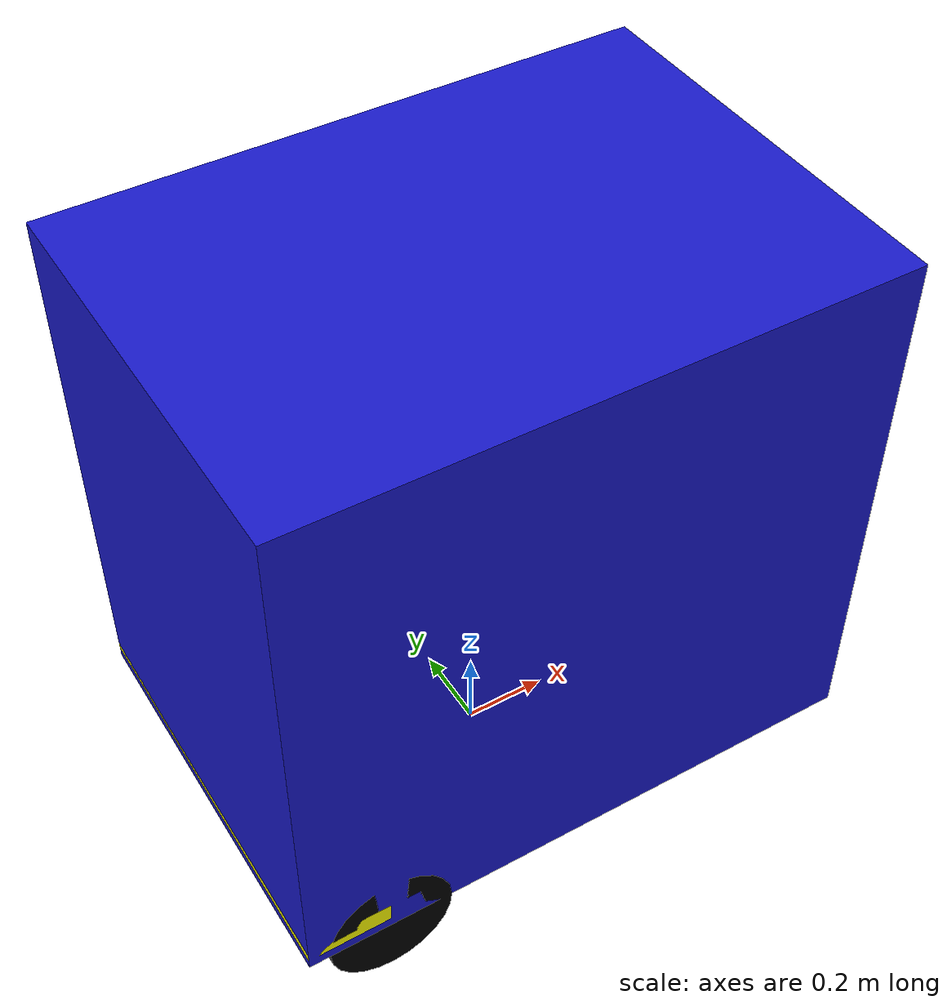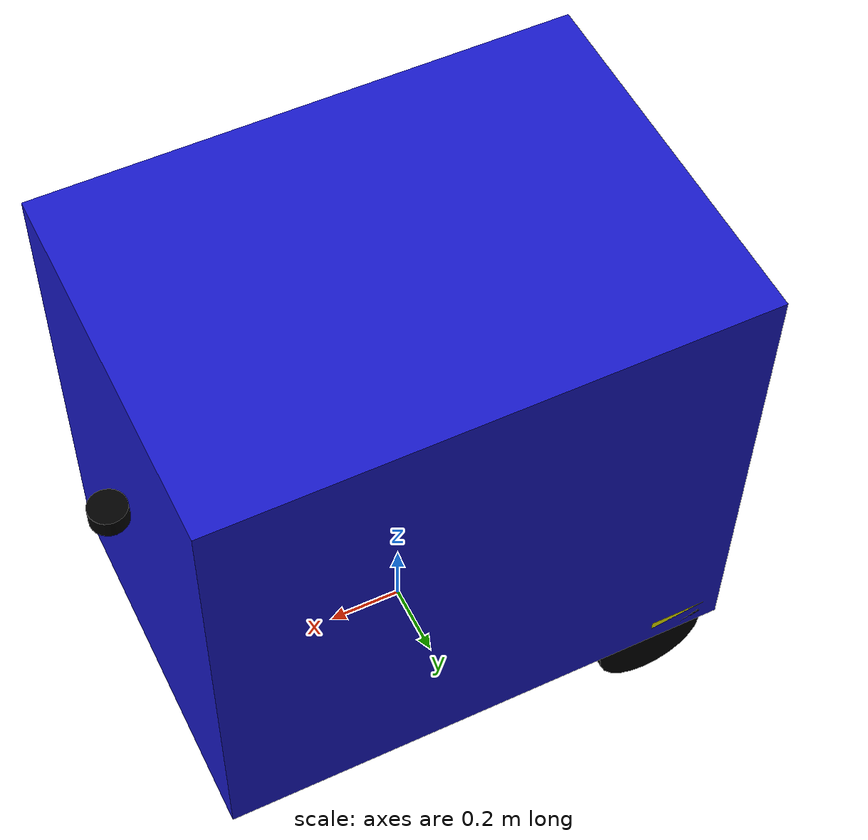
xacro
<?xml version="1.0"?>
<robot name="scrubber_robot" xmlns:xacro="http://www.ros.org/wiki/xacro">

  <xacro:property name="length" value="1.4"/>
  <xacro:property name="width" value="1.0"/>
  <xacro:property name="height" value="1.3"/>

  <xacro:property name="mass" value="200.0"/>

  <xacro:property name="wheel_radius" value="0.15"/>
  <xacro:property name="wheel_width" value="0.1"/>
  <xacro:property name="wheel_base" value="1.0"/>
  <xacro:property name="track_width" value="0.9"/>

  <xacro:property name="brush_offset_x" value="-0.6"/>
  <xacro:property name="brush_width" value="1.0"/>

  <material name="blue">
    <color rgba="0.1 0.1 0.8 1"/>
  </material>
  <material name="black">
    <color rgba="0 0 0 1"/>
  </material>
  <material name="yellow">
    <color rgba="1 1 0 1"/>
  </material>

  <xacro:macro name="box_inertia" params="m w h d">
    <inertial>
      <mass value="${m}"/>
      <inertia ixx="${m / 12.0 * (w*w + h*h) + 0.001}" ixy="0.0" ixz="0.0"
               iyy="${m / 12.0 * (d*d + h*h) + 0.001}" iyz="0.0"
               izz="${m / 12.0 * (w*w + d*d) + 0.001}"/>
    </inertial>
  </xacro:macro>

  <xacro:macro name="cylinder_inertia" params="m r h">
    <inertial>
      <mass value="${m}"/>
      <inertia ixx="${m*(3*r*r+h*h)/12 + 0.001}" ixy = "0" ixz = "0"
               iyy="${m*(3*r*r+h*h)/12 + 0.001}" iyz = "0"
               izz="${m*r*r/2 + 0.001}"/>
    </inertial>
  </xacro:macro>

  <link name="base_footprint"/>

  <joint name="base_joint" type="fixed">
    <parent link="base_footprint"/>
    <child link="base_link"/>
    <origin xyz="0 0 ${wheel_radius}" rpy="0 0 0"/>
  </joint>

  <link name="base_link">
    <visual>
      <geometry>
        <box size="${length} ${width} ${height}"/>
      </geometry>
      <origin xyz="0 0 ${height/2}" rpy="0 0 0"/>
      <material name="blue"/>
    </visual>
    <collision>
      <geometry>
        <box size="${length} ${width} ${height}"/>
      </geometry>
      <origin xyz="0 0 ${height/2}" rpy="0 0 0"/>
    </collision>
    <xacro:box_inertia m="${mass}" w="${width}" h="${height}" d="${length}"/>
  </link>

  <link name="imu_link">
    <visual>
      <geometry><box size="0.05 0.05 0.02"/></geometry>
      <material name="black"/>
    </visual>
    <inertial>
      <mass value="0.01"/>
      <inertia ixx="1e-6" ixy="0" ixz="0" iyy="1e-6" iyz="0" izz="1e-6"/>
    </inertial>
  </link>

  <joint name="imu_joint" type="fixed">
    <parent link="base_link"/>
    <child link="imu_link"/>
    <origin xyz="0 0 ${height/2}" rpy="0 0 0"/>
  </joint>

  <link name="steering_link">
    <visual><geometry><box size="0.01 0.01 0.01"/></geometry></visual>
    <inertial><mass value="5.0"/><inertia ixx="0.1" ixy="0" ixz="0" iyy="0.1" iyz="0" izz="0.1"/></inertial>
  </link>

  <joint name="steering_joint" type="revolute">
    <parent link="base_link"/>
    <child link="steering_link"/>
    <origin xyz="${wheel_base/2} 0 0" rpy="0 0 0"/>
    <axis xyz="0 0 1"/>
    <limit lower="-0.8" upper="0.8" effort="1000" velocity="1.0"/>
  </joint>

  <link name="front_wheel_link">
    <visual>
      <geometry><cylinder radius="${wheel_radius}" length="${wheel_width}"/></geometry>
      <material name="black"/>
      <origin xyz="0 0 0" rpy="${-pi/2} 0 0"/>
    </visual>
    <collision>
      <geometry><cylinder radius="${wheel_radius}" length="${wheel_width}"/></geometry>
      <origin xyz="0 0 0" rpy="${-pi/2} 0 0"/>
    </collision>
    <xacro:cylinder_inertia m="10.0" r="${wheel_radius}" h="${wheel_width}"/>
  </link>

  <joint name="front_wheel_joint" type="continuous">
    <parent link="steering_link"/>
    <child link="front_wheel_link"/>
    <origin xyz="0 0 0" rpy="0 0 0"/>
    <axis xyz="0 1 0"/>
  </joint>

  <xacro:macro name="rear_wheel" params="prefix y_offset">
    <link name="${prefix}_wheel_link">
      <visual>
        <geometry><cylinder radius="${wheel_radius}" length="${wheel_width}"/></geometry>
        <material name="black"/>
        <origin xyz="0 0 0" rpy="${-pi/2} 0 0"/>
      </visual>
      <collision>
        <geometry><cylinder radius="${wheel_radius}" length="${wheel_width}"/></geometry>
        <origin xyz="0 0 0" rpy="${-pi/2} 0 0"/>
      </collision>
      <xacro:cylinder_inertia m="10.0" r="${wheel_radius}" h="${wheel_width}"/>
    </link>

    <joint name="${prefix}_wheel_joint" type="continuous">
      <parent link="base_link"/>
      <child link="${prefix}_wheel_link"/>
      <origin xyz="${-wheel_base/2} ${y_offset} 0" rpy="0 0 0"/>
      <axis xyz="0 1 0"/>
    </joint>
  </xacro:macro>

  <xacro:rear_wheel prefix="rear_left" y_offset="${track_width/2}"/>
  <xacro:rear_wheel prefix="rear_right" y_offset="${-track_width/2}"/>

  <link name="cleaning_tool_link">
    <visual>
        <geometry><box size="0.2 ${brush_width} 0.05"/></geometry>
        <material name="yellow"/>
    </visual>
  </link>

  <joint name="cleaning_tool_joint" type="fixed">
    <parent link="base_link"/>
    <child link="cleaning_tool_link"/>
    <origin xyz="${brush_offset_x} 0 0.05" rpy="0 0 0"/>
  </joint>

  <link name="lidar_link">
    <visual>
      <geometry><cylinder radius="0.05" length="0.05"/></geometry>
      <material name="black"/>
    </visual>
    <inertial>
      <mass value="0.1"/>
      <inertia ixx="1e-5" ixy="0" ixz="0" iyy="1e-5" iyz="0" izz="1e-5"/>
    </inertial>
  </link>

  <joint name="lidar_joint" type="fixed">
    <parent link="base_link"/>
    <child link="lidar_link"/>
    <origin xyz="${length/2 + 0.05} 0 0.75" rpy="0 0 0"/>
  </joint>

  <!-- ================= gz-sim (Harmonic) 标签 ================= -->

  <!-- LiDAR 传感器（gz gpu_lidar） -->
  <gazebo reference="lidar_link">
    <sensor name="lidar" type="gpu_lidar">
      <topic>scan</topic>
      <gz_frame_id>lidar_link</gz_frame_id>
      <update_rate>10</update_rate>
      <always_on>true</always_on>
      <visualize>true</visualize>
      <lidar>
        <scan>
          <horizontal>
            <samples>360</samples>
            <resolution>1</resolution>
            <min_angle>-3.14159</min_angle>
            <max_angle>3.14159</max_angle>
          </horizontal>
        </scan>
        <range>
          <min>0.15</min>
          <max>8.0</max>
          <resolution>0.01</resolution>
        </range>
      </lidar>
    </sensor>
  </gazebo>

  <!-- IMU 传感器 -->
  <gazebo reference="imu_link">
    <sensor name="imu" type="imu">
      <topic>imu/data</topic>
      <gz_frame_id>imu_link</gz_frame_id>
      <update_rate>100</update_rate>
      <always_on>true</always_on>
    </sensor>
  </gazebo>

  <!-- 摩擦（防打滑，地图不漂） -->
  <gazebo reference="front_wheel_link">
    <mu1>0.9</mu1><mu2>0.9</mu2><kp>1e8</kp><kd>10.0</kd>
  </gazebo>
  <gazebo reference="rear_left_wheel_link">
    <mu1>1.0</mu1><mu2>1.0</mu2><kp>1e8</kp><kd>10.0</kd>
  </gazebo>
  <gazebo reference="rear_right_wheel_link">
    <mu1>1.0</mu1><mu2>1.0</mu2><kp>1e8</kp><kd>10.0</kd>
  </gazebo>

  <!-- 系统插件：阿卡曼驱动 + 关节状态 + IMU + 传感器 -->
  <gazebo>
    <plugin filename="gz-sim-ackermann-steering-system"
            name="gz::sim::systems::AckermannSteering">
      <left_joint>rear_left_wheel_joint</left_joint>
      <right_joint>rear_right_wheel_joint</right_joint>
      <left_steering_joint>steering_joint</left_steering_joint>
      <right_steering_joint>steering_joint</right_steering_joint>
      <kingpin_width>${track_width}</kingpin_width>
      <steering_limit>0.8</steering_limit>
      <wheel_base>${wheel_base}</wheel_base>
      <wheel_separation>${track_width}</wheel_separation>
      <wheel_radius>${wheel_radius}</wheel_radius>
      <min_velocity>-2.0</min_velocity>
      <max_velocity>2.0</max_velocity>
      <min_acceleration>-1.0</min_acceleration>
      <max_acceleration>1.0</max_acceleration>
      <topic>cmd_vel</topic>
      <!-- AckermannSteering 只做驱动；odom 由自研 wheel_odometry 节点发布
           （gz 在三轮单驱单转布局下自算 odom 失真）。把其 odom 引到废弃话题/frame，
           避免与自研节点双发 odom->base_footprint TF 冲突。 -->
      <odom_topic>gz_odom_unused</odom_topic>
      <frame_id>gz_odom_unused</frame_id>
      <child_frame_id>gz_base_unused</child_frame_id>
      <odom_publish_frequency>0</odom_publish_frequency>
    </plugin>

    <plugin filename="gz-sim-joint-state-publisher-system"
            name="gz::sim::systems::JointStatePublisher">
      <topic>joint_states</topic>
    </plugin>

    <plugin filename="gz-sim-imu-system"
            name="gz::sim::systems::Imu"/>

    <plugin filename="gz-sim-sensors-system"
            name="gz::sim::systems::Sensors">
      <render_engine>ogre2</render_engine>
    </plugin>
  </gazebo>

</robot>
